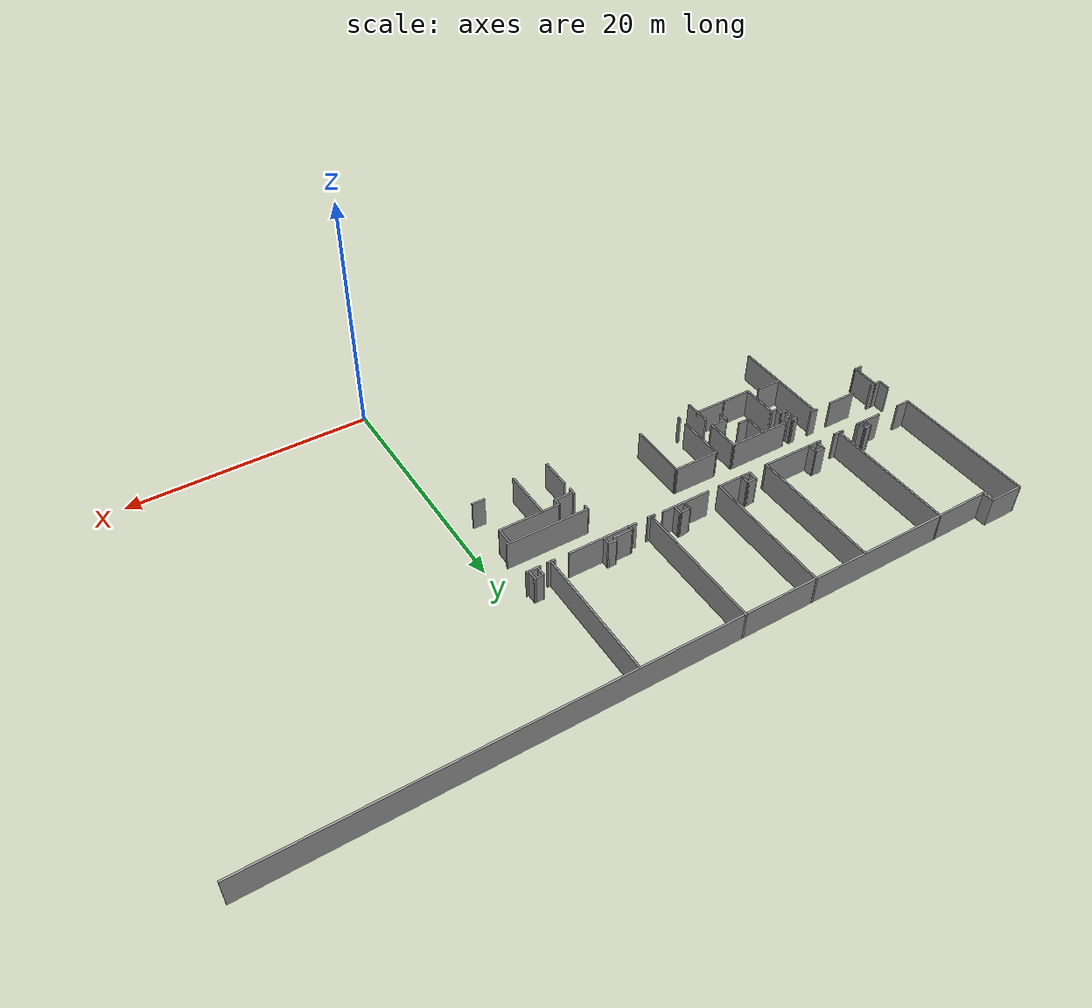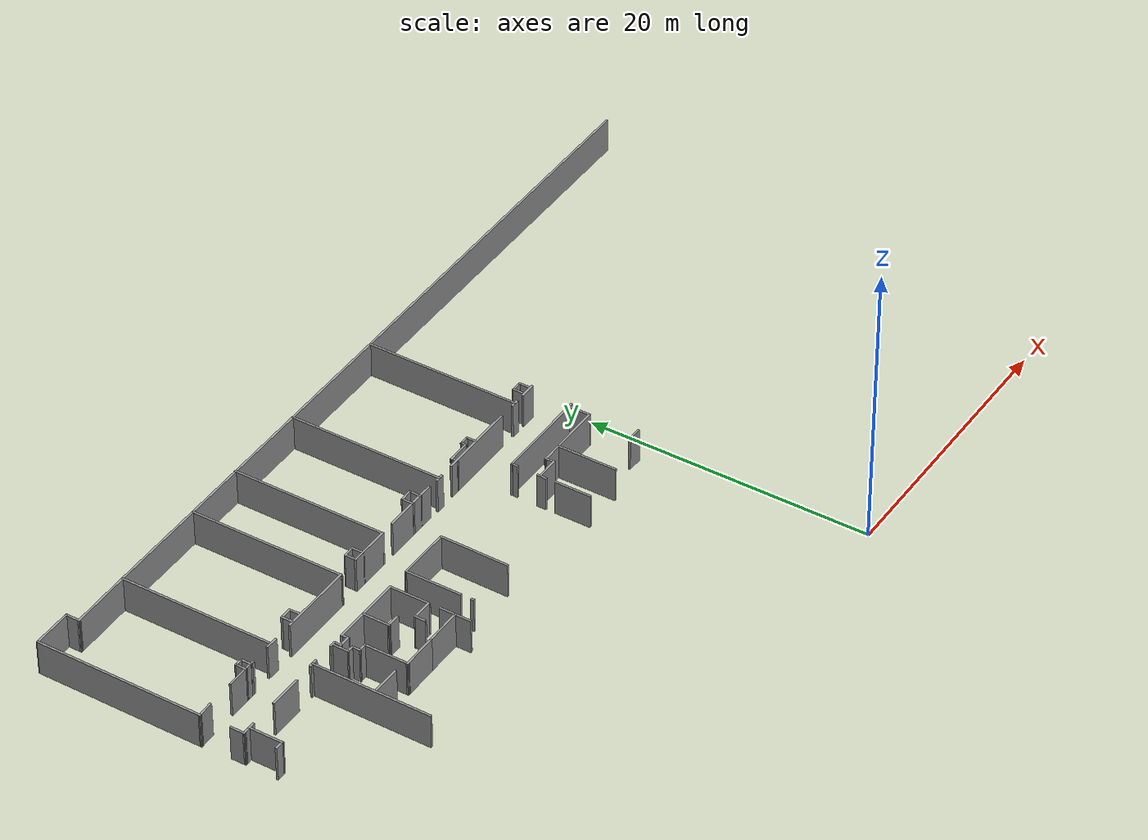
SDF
<sdf version="1.7">
 <model name="HopperFloorGround_Full">
  <pose>0.395792 0.11413 0 0 -0 0</pose>
  <link name="Wall_101">
   <collision name="Wall_101_Collision">
    <geometry><box><size>1 0.15 2.5</size></box></geometry>
    <pose>0 0 1.25 0 -0 0</pose>
   </collision>
   <visual name="Wall_101_Visual">
    <pose>0 0 1.25 0 -0 0</pose>
    <geometry><box><size>1 0.15 2.5</size></box></geometry>
    <material>
     <script><uri>file://media/materials/scripts/gazebo.material</uri><name>Gazebo/Grey</name></script>
     <ambient>1 1 1 1</ambient>
    </material>
    <meta><layer>0</layer></meta>
   </visual>
   <pose>-24.7641 18.4859 0 0 -0 3.14159</pose>
  </link>
  <link name="Wall_102">
   <collision name="Wall_102_Collision">
    <geometry><box><size>1.96918 0.15 2.5</size></box></geometry>
    <pose>0 0 1.25 0 -0 0</pose>
   </collision>
   <visual name="Wall_102_Visual">
    <pose>0 0 1.25 0 -0 0</pose>
    <geometry><box><size>1.96918 0.15 2.5</size></box></geometry>
    <material>
     <script><uri>file://media/materials/scripts/gazebo.material</uri><name>Gazebo/Grey</name></script>
     <ambient>1 1 1 1</ambient>
    </material>
    <meta><layer>0</layer></meta>
   </visual>
   <pose>-25.1838 19.3954 0 0 -0 1.56504</pose>
  </link>
  <link name="Wall_106">
   <collision name="Wall_106_Collision">
    <geometry><box><size>8.39659 0.15 2.5</size></box></geometry>
    <pose>0 0 1.25 0 -0 0</pose>
   </collision>
   <visual name="Wall_106_Visual">
    <pose>0 0 1.25 0 -0 0</pose>
    <geometry><box><size>8.39659 0.15 2.5</size></box></geometry>
    <material>
     <script><uri>file://media/materials/scripts/gazebo.material</uri><name>Gazebo/Grey</name></script>
     <ambient>1 1 1 1</ambient>
    </material>
    <meta><layer>0</layer></meta>
   </visual>
   <pose>-30.3925 16.2262 0 0 -0 1.56836</pose>
  </link>
  <link name="Wall_123">
   <collision name="Wall_123_Collision">
    <geometry><box><size>2.25 0.15 2.5</size></box></geometry>
    <pose>0 0 1.25 0 -0 0</pose>
   </collision>
   <visual name="Wall_123_Visual">
    <pose>0 0 1.25 0 -0 0</pose>
    <geometry><box><size>2.25 0.15 2.5</size></box></geometry>
    <material>
     <script><uri>file://media/materials/scripts/gazebo.material</uri><name>Gazebo/Grey</name></script>
     <ambient>1 1 1 1</ambient>
    </material>
    <meta><layer>0</layer></meta>
   </visual>
   <pose>-22.29 15.6966 0 0 -0 -1.5708</pose>
  </link>
  <link name="Wall_125">
   <collision name="Wall_125_Collision">
    <geometry><box><size>2.75 0.15 2.5</size></box></geometry>
    <pose>0 0 1.25 0 -0 0</pose>
   </collision>
   <visual name="Wall_125_Visual">
    <pose>0 0 1.25 0 -0 0</pose>
    <geometry><box><size>2.75 0.15 2.5</size></box></geometry>
    <material>
     <script><uri>file://media/materials/scripts/gazebo.material</uri><name>Gazebo/Grey</name></script>
     <ambient>1 1 1 1</ambient>
    </material>
    <meta><layer>0</layer></meta>
   </visual>
   <pose>-23.59 15.7001 0 0 -0 3.14159</pose>
  </link>
  <link name="Wall_126">
   <collision name="Wall_126_Collision">
    <geometry><box><size>2.64453 0.15 2.5</size></box></geometry>
    <pose>0 0 1.25 0 -0 0</pose>
   </collision>
   <visual name="Wall_126_Visual">
    <pose>0 0 1.25 0 -0 0</pose>
    <geometry><box><size>2.64453 0.15 2.5</size></box></geometry>
    <material>
     <script><uri>file://media/materials/scripts/gazebo.material</uri><name>Gazebo/Grey</name></script>
     <ambient>1 1 1 1</ambient>
    </material>
    <meta><layer>0</layer></meta>
   </visual>
   <pose>-26.1372 15.6944 0 0 -0 -3.13698</pose>
  </link>
  <link name="Wall_127">
   <collision name="Wall_127_Collision">
    <geometry><box><size>3.17459 0.15 2.5</size></box></geometry>
    <pose>0 0 1.25 0 -0 0</pose>
   </collision>
   <visual name="Wall_127_Visual">
    <pose>0 0 1.25 0 -0 0</pose>
    <geometry><box><size>3.17459 0.15 2.5</size></box></geometry>
    <material>
     <script><uri>file://media/materials/scripts/gazebo.material</uri><name>Gazebo/Grey</name></script>
     <ambient>1 1 1 1</ambient>
    </material>
    <meta><layer>0</layer></meta>
   </visual>
   <pose>-27.3787 17.2009 0 0 -0 1.56699</pose>
  </link>
  <link name="Wall_129">
   <collision name="Wall_129_Collision">
    <geometry><box><size>0.692389 0.15 2.5</size></box></geometry>
    <pose>0 0 1.25 0 -0 0</pose>
   </collision>
   <visual name="Wall_129_Visual">
    <pose>0 0 1.25 0 -0 0</pose>
    <geometry><box><size>0.692389 0.15 2.5</size></box></geometry>
    <material>
     <script><uri>file://media/materials/scripts/gazebo.material</uri><name>Gazebo/Grey</name></script>
     <ambient>1 1 1 1</ambient>
    </material>
    <meta><layer>0</layer></meta>
   </visual>
   <pose>-27.6442 18.7138 0 0 -0 3.13898</pose>
  </link>
  <link name="Wall_130">
   <collision name="Wall_130_Collision">
    <geometry><box><size>0.679125 0.15 2.5</size></box></geometry>
    <pose>0 0 1.25 0 -0 0</pose>
   </collision>
   <visual name="Wall_130_Visual">
    <pose>0 0 1.25 0 -0 0</pose>
    <geometry><box><size>0.679125 0.15 2.5</size></box></geometry>
    <material>
     <script><uri>file://media/materials/scripts/gazebo.material</uri><name>Gazebo/Grey</name></script>
     <ambient>1 1 1 1</ambient>
    </material>
    <meta><layer>0</layer></meta>
   </visual>
   <pose>-27.9211 18.979 0 0 -0 1.59253</pose>
  </link>
  <link name="Wall_131">
   <collision name="Wall_131_Collision">
    <geometry><box><size>0.598647 0.15 2.5</size></box></geometry>
    <pose>0 0 1.25 0 -0 0</pose>
   </collision>
   <visual name="Wall_131_Visual">
    <pose>0 0 1.25 0 -0 0</pose>
    <geometry><box><size>0.598647 0.15 2.5</size></box></geometry>
    <material>
     <script><uri>file://media/materials/scripts/gazebo.material</uri><name>Gazebo/Grey</name></script>
     <ambient>1 1 1 1</ambient>
    </material>
    <meta><layer>0</layer></meta>
   </visual>
   <pose>-28.1511 19.2493 0 0 -0 3.11596</pose>
  </link>
  <link name="Wall_132">
   <collision name="Wall_132_Collision">
    <geometry><box><size>1.17356 0.15 2.5</size></box></geometry>
    <pose>0 0 1.25 0 -0 0</pose>
   </collision>
   <visual name="Wall_132_Visual">
    <pose>0 0 1.25 0 -0 0</pose>
    <geometry><box><size>1.17356 0.15 2.5</size></box></geometry>
    <material>
     <script><uri>file://media/materials/scripts/gazebo.material</uri><name>Gazebo/Grey</name></script>
     <ambient>1 1 1 1</ambient>
    </material>
    <meta><layer>0</layer></meta>
   </visual>
   <pose>-28.3696 19.7668 0 0 -0 1.55956</pose>
  </link>
  <link name="Wall_134">
   <collision name="Wall_134_Collision">
    <geometry><box><size>2.16263 0.15 2.5</size></box></geometry>
    <pose>0 0 1.25 0 -0 0</pose>
   </collision>
   <visual name="Wall_134_Visual">
    <pose>0 0 1.25 0 -0 0</pose>
    <geometry><box><size>2.16263 0.15 2.5</size></box></geometry>
    <material>
     <script><uri>file://media/materials/scripts/gazebo.material</uri><name>Gazebo/Grey</name></script>
     <ambient>1 1 1 1</ambient>
    </material>
    <meta><layer>0</layer></meta>
   </visual>
   <pose>-29.3586 15.9545 0 0 -0 3.13016</pose>
  </link>
  <link name="Wall_142">
   <collision name="Wall_142_Collision">
    <geometry><box><size>4 0.15 2.5</size></box></geometry>
    <pose>0 0 1.25 0 -0 0</pose>
   </collision>
   <visual name="Wall_142_Visual">
    <pose>0 0 1.25 0 -0 0</pose>
    <geometry><box><size>4 0.15 2.5</size></box></geometry>
    <material>
     <script><uri>file://media/materials/scripts/gazebo.material</uri><name>Gazebo/Grey</name></script>
     <ambient>1 1 1 1</ambient>
    </material>
    <meta><layer>0</layer></meta>
   </visual>
   <pose>-20.6382 18.3734 0 0 -0 1.5708</pose>
  </link>
  <link name="Wall_143">
   <collision name="Wall_143_Collision">
    <geometry><box><size>3.9067 0.15 2.5</size></box></geometry>
    <pose>0 0 1.25 0 -0 0</pose>
   </collision>
   <visual name="Wall_143_Visual">
    <pose>0 0 1.25 0 -0 0</pose>
    <geometry><box><size>3.9067 0.15 2.5</size></box></geometry>
    <material>
     <script><uri>file://media/materials/scripts/gazebo.material</uri><name>Gazebo/Grey</name></script>
     <ambient>1 1 1 1</ambient>
    </material>
    <meta><layer>0</layer></meta>
   </visual>
   <pose>-18.7599 20.2897 0 0 -0 -0.004631</pose>
  </link>
  <link name="Wall_144">
   <collision name="Wall_144_Collision">
    <geometry><box><size>4.92593 0.15 2.5</size></box></geometry>
    <pose>0 0 1.25 0 -0 0</pose>
   </collision>
   <visual name="Wall_144_Visual">
    <pose>0 0 1.25 0 -0 0</pose>
    <geometry><box><size>4.92593 0.15 2.5</size></box></geometry>
    <material>
     <script><uri>file://media/materials/scripts/gazebo.material</uri><name>Gazebo/Grey</name></script>
     <ambient>1 1 1 1</ambient>
    </material>
    <meta><layer>0</layer></meta>
   </visual>
   <pose>-16.9045 17.8932 0 0 -0 -1.58035</pose>
  </link>
  <link name="Wall_147">
   <collision name="Wall_147_Collision">
    <geometry><box><size>0.25 0.15 2.5</size></box></geometry>
    <pose>0 0 1.25 0 -0 0</pose>
   </collision>
   <visual name="Wall_147_Visual">
    <pose>0 0 1.25 0 -0 0</pose>
    <geometry><box><size>0.25 0.15 2.5</size></box></geometry>
    <material>
     <script><uri>file://media/materials/scripts/gazebo.material</uri><name>Gazebo/Grey</name></script>
     <ambient>1 1 1 1</ambient>
    </material>
    <meta><layer>0</layer></meta>
   </visual>
   <pose>-20.623 15.5619 0 0 -0 -1.5708</pose>
  </link>
  <link name="Wall_289">
   <collision name="Wall_289_Collision">
    <geometry><box><size>1.21738 0.15 2.5</size></box></geometry>
    <pose>0 0 1.25 0 -0 0</pose>
   </collision>
   <visual name="Wall_289_Visual">
    <pose>0 0 1.25 0 -0 0</pose>
    <geometry><box><size>1.21738 0.15 2.5</size></box></geometry>
    <material>
     <script><uri>file://media/materials/scripts/gazebo.material</uri><name>Gazebo/Grey</name></script>
     <ambient>1 1 1 1</ambient>
    </material>
    <meta><layer>0</layer></meta>
   </visual>
   <pose>-36.9815 23.4312 0 0 -0 -3.10827</pose>
  </link>
  <link name="Wall_290">
   <collision name="Wall_290_Collision">
    <geometry><box><size>11.8914 0.15 2.5</size></box></geometry>
    <pose>0 0 1.25 0 -0 0</pose>
   </collision>
   <visual name="Wall_290_Visual">
    <pose>0 0 1.25 0 -0 0</pose>
    <geometry><box><size>11.8914 0.15 2.5</size></box></geometry>
    <material>
     <script><uri>file://media/materials/scripts/gazebo.material</uri><name>Gazebo/Grey</name></script>
     <ambient>1 1 1 1</ambient>
    </material>
    <meta><layer>0</layer></meta>
   </visual>
   <pose>-37.4974 29.2841 0 0 -0 1.56777</pose>
  </link>
  <link name="Wall_291">
   <collision name="Wall_291_Collision">
    <geometry><box><size>2.96077 0.15 2.5</size></box></geometry>
    <pose>0 0 1.25 0 -0 0</pose>
   </collision>
   <visual name="Wall_291_Visual">
    <pose>0 0 1.25 0 -0 0</pose>
    <geometry><box><size>2.96077 0.15 2.5</size></box></geometry>
    <material>
     <script><uri>file://media/materials/scripts/gazebo.material</uri><name>Gazebo/Grey</name></script>
     <ambient>1 1 1 1</ambient>
    </material>
    <meta><layer>0</layer></meta>
   </visual>
   <pose>-36.0742 35.1547 0 0 -0 0</pose>
  </link>
  <link name="Wall_292">
   <collision name="Wall_292_Collision">
    <geometry><box><size>1.07506 0.15 2.5</size></box></geometry>
    <pose>0 0 1.25 0 -0 0</pose>
   </collision>
   <visual name="Wall_292_Visual">
    <pose>0 0 1.25 0 -0 0</pose>
    <geometry><box><size>1.07506 0.15 2.5</size></box></geometry>
    <material>
     <script><uri>file://media/materials/scripts/gazebo.material</uri><name>Gazebo/Grey</name></script>
     <ambient>1 1 1 1</ambient>
    </material>
    <meta><layer>0</layer></meta>
   </visual>
   <pose>-34.6688 34.6921 0 0 -0 -1.5708</pose>
  </link>
  <link name="Wall_293">
   <collision name="Wall_293_Collision">
    <geometry><box><size>4.56242 0.15 2.5</size></box></geometry>
    <pose>0 0 1.25 0 -0 0</pose>
   </collision>
   <visual name="Wall_293_Visual">
    <pose>0 0 1.25 0 -0 0</pose>
    <geometry><box><size>4.56242 0.15 2.5</size></box></geometry>
    <material>
     <script><uri>file://media/materials/scripts/gazebo.material</uri><name>Gazebo/Grey</name></script>
     <ambient>1 1 1 1</ambient>
    </material>
    <meta><layer>0</layer></meta>
   </visual>
   <pose>-32.4629 34.2474 0 0 -0 0.008064</pose>
  </link>
  <link name="Wall_294">
   <collision name="Wall_294_Collision">
    <geometry><box><size>10.895 0.15 2.5</size></box></geometry>
    <pose>0 0 1.25 0 -0 0</pose>
   </collision>
   <visual name="Wall_294_Visual">
    <pose>0 0 1.25 0 -0 0</pose>
    <geometry><box><size>10.895 0.15 2.5</size></box></geometry>
    <material>
     <script><uri>file://media/materials/scripts/gazebo.material</uri><name>Gazebo/Grey</name></script>
     <ambient>1 1 1 1</ambient>
    </material>
    <meta><layer>0</layer></meta>
   </visual>
   <pose>-30.257 28.8927 0 0 -0 -1.5708</pose>
  </link>
  <link name="Wall_296">
   <collision name="Wall_296_Collision">
    <geometry><box><size>1.63469 0.15 2.5</size></box></geometry>
    <pose>0 0 1.25 0 -0 0</pose>
   </collision>
   <visual name="Wall_296_Visual">
    <pose>0 0 1.25 0 -0 0</pose>
    <geometry><box><size>1.63469 0.15 2.5</size></box></geometry>
    <material>
     <script><uri>file://media/materials/scripts/gazebo.material</uri><name>Gazebo/Grey</name></script>
     <ambient>1 1 1 1</ambient>
    </material>
    <meta><layer>0</layer></meta>
   </visual>
   <pose>-33.6172 23.4485 0 0 -0 0</pose>
  </link>
  <link name="Wall_297">
   <collision name="Wall_297_Collision">
    <geometry><box><size>0.818915 0.15 2.5</size></box></geometry>
    <pose>0 0 1.25 0 -0 0</pose>
   </collision>
   <visual name="Wall_297_Visual">
    <pose>0 0 1.25 0 -0 0</pose>
    <geometry><box><size>0.818915 0.15 2.5</size></box></geometry>
    <material>
     <script><uri>file://media/materials/scripts/gazebo.material</uri><name>Gazebo/Grey</name></script>
     <ambient>1 1 1 1</ambient>
    </material>
    <meta><layer>0</layer></meta>
   </visual>
   <pose>-32.8682 23.7829 0 0 -0 1.5508</pose>
  </link>
  <link name="Wall_298">
   <collision name="Wall_298_Collision">
    <geometry><box><size>0.65845 0.15 2.5</size></box></geometry>
    <pose>0 0 1.25 0 -0 0</pose>
   </collision>
   <visual name="Wall_298_Visual">
    <pose>0 0 1.25 0 -0 0</pose>
    <geometry><box><size>0.65845 0.15 2.5</size></box></geometry>
    <material>
     <script><uri>file://media/materials/scripts/gazebo.material</uri><name>Gazebo/Grey</name></script>
     <ambient>1 1 1 1</ambient>
    </material>
    <meta><layer>0</layer></meta>
   </visual>
   <pose>-32.6074 24.124 0 0 -0 0.02631</pose>
  </link>
  <link name="Wall_299">
   <collision name="Wall_299_Collision">
    <geometry><box><size>0.846047 0.15 2.5</size></box></geometry>
    <pose>0 0 1.25 0 -0 0</pose>
   </collision>
   <visual name="Wall_299_Visual">
    <pose>0 0 1.25 0 -0 0</pose>
    <geometry><box><size>0.846047 0.15 2.5</size></box></geometry>
    <material>
     <script><uri>file://media/materials/scripts/gazebo.material</uri><name>Gazebo/Grey</name></script>
     <ambient>1 1 1 1</ambient>
    </material>
    <meta><layer>0</layer></meta>
   </visual>
   <pose>-32.3465 23.7829 0 0 -0 -1.55157</pose>
  </link>
  <link name="Wall_301">
   <collision name="Wall_301_Collision">
    <geometry><box><size>0.885659 0.15 2.5</size></box></geometry>
    <pose>0 0 1.25 0 -0 0</pose>
   </collision>
   <visual name="Wall_301_Visual">
    <pose>0 0 1.25 0 -0 0</pose>
    <geometry><box><size>0.885659 0.15 2.5</size></box></geometry>
    <material>
     <script><uri>file://media/materials/scripts/gazebo.material</uri><name>Gazebo/Grey</name></script>
     <ambient>1 1 1 1</ambient>
    </material>
    <meta><layer>0</layer></meta>
   </visual>
   <pose>-32.5071 23.4485 0 0 -0 0</pose>
  </link>
  <link name="Wall_303">
   <collision name="Wall_303_Collision">
    <geometry><box><size>0.925902 0.15 2.5</size></box></geometry>
    <pose>0 0 1.25 0 -0 0</pose>
   </collision>
   <visual name="Wall_303_Visual">
    <pose>0 0 1.25 0 -0 0</pose>
    <geometry><box><size>0.925902 0.15 2.5</size></box></geometry>
    <material>
     <script><uri>file://media/materials/scripts/gazebo.material</uri><name>Gazebo/Grey</name></script>
     <ambient>1 1 1 1</ambient>
    </material>
    <meta><layer>0</layer></meta>
   </visual>
   <pose>-30.1998 23.4552 0 0 -0 -0.01724</pose>
  </link>
  <link name="Wall_305">
   <collision name="Wall_305_Collision">
    <geometry><box><size>5.47154 0.15 2.5</size></box></geometry>
    <pose>0 0 1.25 0 -0 0</pose>
   </collision>
   <visual name="Wall_305_Visual">
    <pose>0 0 1.25 0 -0 0</pose>
    <geometry><box><size>5.47154 0.15 2.5</size></box></geometry>
    <material>
     <script><uri>file://media/materials/scripts/gazebo.material</uri><name>Gazebo/Grey</name></script>
     <ambient>1 1 1 1</ambient>
    </material>
    <meta><layer>0</layer></meta>
   </visual>
   <pose>-25.641 23.4371 0 0 -0 -0.005814</pose>
  </link>
  <link name="Wall_306">
   <collision name="Wall_306_Collision">
    <geometry><box><size>10.9786 0.15 2.5</size></box></geometry>
    <pose>0 0 1.25 0 -0 0</pose>
   </collision>
   <visual name="Wall_306_Visual">
    <pose>0 0 1.25 0 -0 0</pose>
    <geometry><box><size>10.9786 0.15 2.5</size></box></geometry>
    <material>
     <script><uri>file://media/materials/scripts/gazebo.material</uri><name>Gazebo/Grey</name></script>
     <ambient>1 1 1 1</ambient>
    </material>
    <meta><layer>0</layer></meta>
   </visual>
   <pose>-23.0267 28.8359 0 0 -0 1.57365</pose>
  </link>
  <link name="Wall_308">
   <collision name="Wall_308_Collision">
    <geometry><box><size>0.861589 0.15 2.5</size></box></geometry>
    <pose>0 0 1.25 0 -0 0</pose>
   </collision>
   <visual name="Wall_308_Visual">
    <pose>0 0 1.25 0 -0 0</pose>
    <geometry><box><size>0.861589 0.15 2.5</size></box></geometry>
    <material>
     <script><uri>file://media/materials/scripts/gazebo.material</uri><name>Gazebo/Grey</name></script>
     <ambient>1 1 1 1</ambient>
    </material>
    <meta><layer>0</layer></meta>
   </visual>
   <pose>-27.9923 23.8703 0 0 -0 1.5708</pose>
  </link>
  <link name="Wall_309">
   <collision name="Wall_309_Collision">
    <geometry><box><size>0.923466 0.15 2.5</size></box></geometry>
    <pose>0 0 1.25 0 -0 0</pose>
   </collision>
   <visual name="Wall_309_Visual">
    <pose>0 0 1.25 0 -0 0</pose>
    <geometry><box><size>0.923466 0.15 2.5</size></box></geometry>
    <material>
     <script><uri>file://media/materials/scripts/gazebo.material</uri><name>Gazebo/Grey</name></script>
     <ambient>1 1 1 1</ambient>
    </material>
    <meta><layer>0</layer></meta>
   </visual>
   <pose>-27.6056 24.2261 0 0 -0 0</pose>
  </link>
  <link name="Wall_310">
   <collision name="Wall_310_Collision">
    <geometry><box><size>0.893171 0.15 2.5</size></box></geometry>
    <pose>0 0 1.25 0 -0 0</pose>
   </collision>
   <visual name="Wall_310_Visual">
    <pose>0 0 1.25 0 -0 0</pose>
    <geometry><box><size>0.893171 0.15 2.5</size></box></geometry>
    <material>
     <script><uri>file://media/materials/scripts/gazebo.material</uri><name>Gazebo/Grey</name></script>
     <ambient>1 1 1 1</ambient>
    </material>
    <meta><layer>0</layer></meta>
   </visual>
   <pose>-27.2034 23.8548 0 0 -0 -1.52915</pose>
  </link>
  <link name="Wall_312">
   <collision name="Wall_312_Collision">
    <geometry><box><size>3 0.15 2.5</size></box></geometry>
    <pose>0 0 1.25 0 -0 0</pose>
   </collision>
   <visual name="Wall_312_Visual">
    <pose>0 0 1.25 0 -0 0</pose>
    <geometry><box><size>3 0.15 2.5</size></box></geometry>
    <material>
     <script><uri>file://media/materials/scripts/gazebo.material</uri><name>Gazebo/Grey</name></script>
     <ambient>1 1 1 1</ambient>
    </material>
    <meta><layer>0</layer></meta>
   </visual>
   <pose>-19.9465 23.4526 0 0 -0 0</pose>
  </link>
  <link name="Wall_314">
   <collision name="Wall_314_Collision">
    <geometry><box><size>4.15469 0.15 2.5</size></box></geometry>
    <pose>0 0 1.25 0 -0 0</pose>
   </collision>
   <visual name="Wall_314_Visual">
    <pose>0 0 1.25 0 -0 0</pose>
    <geometry><box><size>4.15469 0.15 2.5</size></box></geometry>
    <material>
     <script><uri>file://media/materials/scripts/gazebo.material</uri><name>Gazebo/Grey</name></script>
     <ambient>1 1 1 1</ambient>
    </material>
    <meta><layer>0</layer></meta>
   </visual>
   <pose>-15.4399 23.4526 0 0 -0 0</pose>
  </link>
  <link name="Wall_316">
   <collision name="Wall_316_Collision">
    <geometry><box><size>0.892527 0.15 2.5</size></box></geometry>
    <pose>0 0 1.25 0 -0 0</pose>
   </collision>
   <visual name="Wall_316_Visual">
    <pose>0 0 1.25 0 -0 0</pose>
    <geometry><box><size>0.892527 0.15 2.5</size></box></geometry>
    <material>
     <script><uri>file://media/materials/scripts/gazebo.material</uri><name>Gazebo/Grey</name></script>
     <ambient>1 1 1 1</ambient>
    </material>
    <meta><layer>0</layer></meta>
   </visual>
   <pose>-21.3715 23.8239 0 0 -0 1.5708</pose>
  </link>
  <link name="Wall_317">
   <collision name="Wall_317_Collision">
    <geometry><box><size>0.893171 0.15 2.5</size></box></geometry>
    <pose>0 0 1.25 0 -0 0</pose>
   </collision>
   <visual name="Wall_317_Visual">
    <pose>0 0 1.25 0 -0 0</pose>
    <geometry><box><size>0.893171 0.15 2.5</size></box></geometry>
    <material>
     <script><uri>file://media/materials/scripts/gazebo.material</uri><name>Gazebo/Grey</name></script>
     <ambient>1 1 1 1</ambient>
    </material>
    <meta><layer>0</layer></meta>
   </visual>
   <pose>-21.0002 24.2106 0 0 -0 0.041643</pose>
  </link>
  <link name="Wall_318">
   <collision name="Wall_318_Collision">
    <geometry><box><size>0.924084 0.15 2.5</size></box></geometry>
    <pose>0 0 1.25 0 -0 0</pose>
   </collision>
   <visual name="Wall_318_Visual">
    <pose>0 0 1.25 0 -0 0</pose>
    <geometry><box><size>0.924084 0.15 2.5</size></box></geometry>
    <material>
     <script><uri>file://media/materials/scripts/gazebo.material</uri><name>Gazebo/Grey</name></script>
     <ambient>1 1 1 1</ambient>
    </material>
    <meta><layer>0</layer></meta>
   </visual>
   <pose>-20.6135 23.8393 0 0 -0 -1.53082</pose>
  </link>
  <link name="Wall_320">
   <collision name="Wall_320_Collision">
    <geometry><box><size>0.516732 0.15 2.5</size></box></geometry>
    <pose>0 0 1.25 0 -0 0</pose>
   </collision>
   <visual name="Wall_320_Visual">
    <pose>0 0 1.25 0 -0 0</pose>
    <geometry><box><size>0.516732 0.15 2.5</size></box></geometry>
    <material>
     <script><uri>file://media/materials/scripts/gazebo.material</uri><name>Gazebo/Grey</name></script>
     <ambient>1 1 1 1</ambient>
    </material>
    <meta><layer>0</layer></meta>
   </visual>
   <pose>-8.86715 20.1664 0 0 -0 1.5153</pose>
  </link>
  <link name="Wall_321">
   <collision name="Wall_321_Collision">
    <geometry><box><size>6.94445 0.15 2.5</size></box></geometry>
    <pose>0 0 1.25 0 -0 0</pose>
   </collision>
   <visual name="Wall_321_Visual">
    <pose>0 0 1.25 0 -0 0</pose>
    <geometry><box><size>6.94445 0.15 2.5</size></box></geometry>
    <material>
     <script><uri>file://media/materials/scripts/gazebo.material</uri><name>Gazebo/Grey</name></script>
     <ambient>1 1 1 1</ambient>
    </material>
    <meta><layer>0</layer></meta>
   </visual>
   <pose>-5.48009 20.3494 0 0 -0 0</pose>
  </link>
  <link name="Wall_324">
   <collision name="Wall_324_Collision">
    <geometry><box><size>1.61481 0.15 2.5</size></box></geometry>
    <pose>0 0 1.25 0 -0 0</pose>
   </collision>
   <visual name="Wall_324_Visual">
    <pose>0 0 1.25 0 -0 0</pose>
    <geometry><box><size>1.61481 0.15 2.5</size></box></geometry>
    <material>
     <script><uri>file://media/materials/scripts/gazebo.material</uri><name>Gazebo/Grey</name></script>
     <ambient>1 1 1 1</ambient>
    </material>
    <meta><layer>0</layer></meta>
   </visual>
   <pose>-2.31681 19.5968 0 0 -0 -1.58468</pose>
  </link>
  <link name="Wall_325">
   <collision name="Wall_325_Collision">
    <geometry><box><size>5.17468 0.15 2.5</size></box></geometry>
    <pose>0 0 1.25 0 -0 0</pose>
   </collision>
   <visual name="Wall_325_Visual">
    <pose>0 0 1.25 0 -0 0</pose>
    <geometry><box><size>5.17468 0.15 2.5</size></box></geometry>
    <material>
     <script><uri>file://media/materials/scripts/gazebo.material</uri><name>Gazebo/Grey</name></script>
     <ambient>1 1 1 1</ambient>
    </material>
    <meta><layer>0</layer></meta>
   </visual>
   <pose>-4.8393 18.8543 0 0 -0 -3.13754</pose>
  </link>
  <link name="Wall_326">
   <collision name="Wall_326_Collision">
    <geometry><box><size>0.700756 0.15 2.5</size></box></geometry>
    <pose>0 0 1.25 0 -0 0</pose>
   </collision>
   <visual name="Wall_326_Visual">
    <pose>0 0 1.25 0 -0 0</pose>
    <geometry><box><size>0.700756 0.15 2.5</size></box></geometry>
    <material>
     <script><uri>file://media/materials/scripts/gazebo.material</uri><name>Gazebo/Grey</name></script>
     <ambient>1 1 1 1</ambient>
    </material>
    <meta><layer>0</layer></meta>
   </visual>
   <pose>-7.33128 18.5695 0 0 -0 -1.49686</pose>
  </link>
  <link name="Wall_327">
   <collision name="Wall_327_Collision">
    <geometry><box><size>1.67583 0.15 2.5</size></box></geometry>
    <pose>0 0 1.25 0 -0 0</pose>
   </collision>
   <visual name="Wall_327_Visual">
    <pose>0 0 1.25 0 -0 0</pose>
    <geometry><box><size>1.67583 0.15 2.5</size></box></geometry>
    <material>
     <script><uri>file://media/materials/scripts/gazebo.material</uri><name>Gazebo/Grey</name></script>
     <ambient>1 1 1 1</ambient>
    </material>
    <meta><layer>0</layer></meta>
   </visual>
   <pose>-8.07378 18.2847 0 0 -0 -3.12826</pose>
  </link>
  <link name="Wall_329">
   <collision name="Wall_329_Collision">
    <geometry><box><size>0.699628 0.15 2.5</size></box></geometry>
    <pose>0 0 1.25 0 -0 0</pose>
   </collision>
   <visual name="Wall_329_Visual">
    <pose>0 0 1.25 0 -0 0</pose>
    <geometry><box><size>0.699628 0.15 2.5</size></box></geometry>
    <material>
     <script><uri>file://media/materials/scripts/gazebo.material</uri><name>Gazebo/Grey</name></script>
     <ambient>1 1 1 1</ambient>
    </material>
    <meta><layer>0</layer></meta>
   </visual>
   <pose>-8.90783 18.1626 0 0 -0 1.53378</pose>
  </link>
  <link name="Wall_331">
   <collision name="Wall_331_Collision">
    <geometry><box><size>2.59112 0.15 2.5</size></box></geometry>
    <pose>0 0 1.25 0 -0 0</pose>
   </collision>
   <visual name="Wall_331_Visual">
    <pose>0 0 1.25 0 -0 0</pose>
    <geometry><box><size>2.59112 0.15 2.5</size></box></geometry>
    <material>
     <script><uri>file://media/materials/scripts/gazebo.material</uri><name>Gazebo/Grey</name></script>
     <ambient>1 1 1 1</ambient>
    </material>
    <meta><layer>0</layer></meta>
   </visual>
   <pose>-8.87732 15.9147 0 0 -0 -1.5708</pose>
  </link>
  <link name="Wall_431">
   <collision name="Wall_431_Collision">
    <geometry><box><size>1.03928 0.15 2.5</size></box></geometry>
    <pose>0 0 1.25 0 -0 0</pose>
   </collision>
   <visual name="Wall_431_Visual">
    <pose>0 0 1.25 0 -0 0</pose>
    <geometry><box><size>1.03928 0.15 2.5</size></box></geometry>
    <material>
     <script><uri>file://media/materials/scripts/gazebo.material</uri><name>Gazebo/Grey</name></script>
     <ambient>1 1 1 1</ambient>
    </material>
    <meta><layer>0</layer></meta>
   </visual>
   <pose>-2.44093 15.5096 0 0 -0 3.11528</pose>
  </link>
  <link name="Wall_457">
   <collision name="Wall_457_Collision">
    <geometry><box><size>54.7652 0.15 2.5</size></box></geometry>
    <pose>0 0 1.25 0 -0 0</pose>
   </collision>
   <visual name="Wall_457_Visual">
    <pose>0 0 1.25 0 -0 0</pose>
    <geometry><box><size>54.7652 0.15 2.5</size></box></geometry>
    <material>
     <script><uri>file://media/materials/scripts/gazebo.material</uri><name>Gazebo/Grey</name></script>
     <ambient>1 1 1 1</ambient>
    </material>
    <meta><layer>0</layer></meta>
   </visual>
   <pose>-2.94935 34.2729 0 0 -0 0.000282</pose>
  </link>
  <link name="Wall_459">
   <collision name="Wall_459_Collision">
    <geometry><box><size>11 0.15 2.5</size></box></geometry>
    <pose>0 0 1.25 0 -0 0</pose>
   </collision>
   <visual name="Wall_459_Visual">
    <pose>0 0 1.25 0 -0 0</pose>
    <geometry><box><size>11 0.15 2.5</size></box></geometry>
    <material>
     <script><uri>file://media/materials/scripts/gazebo.material</uri><name>Gazebo/Grey</name></script>
     <ambient>1 1 1 1</ambient>
    </material>
    <meta><layer>0</layer></meta>
   </visual>
   <pose>-18.5215 28.8776 0 0 -0 1.5708</pose>
  </link>
  <link name="Wall_461">
   <collision name="Wall_461_Collision">
    <geometry><box><size>11 0.15 2.5</size></box></geometry>
    <pose>0 0 1.25 0 -0 0</pose>
   </collision>
   <visual name="Wall_461_Visual">
    <pose>0 0 1.25 0 -0 0</pose>
    <geometry><box><size>11 0.15 2.5</size></box></geometry>
    <material>
     <script><uri>file://media/materials/scripts/gazebo.material</uri><name>Gazebo/Grey</name></script>
     <ambient>1 1 1 1</ambient>
    </material>
    <meta><layer>0</layer></meta>
   </visual>
   <pose>-12.3846 28.8556 0 0 -0 -1.5708</pose>
  </link>
  <link name="Wall_463">
   <collision name="Wall_463_Collision">
    <geometry><box><size>5.75 0.15 2.5</size></box></geometry>
    <pose>0 0 1.25 0 -0 0</pose>
   </collision>
   <visual name="Wall_463_Visual">
    <pose>0 0 1.25 0 -0 0</pose>
    <geometry><box><size>5.75 0.15 2.5</size></box></geometry>
    <material>
     <script><uri>file://media/materials/scripts/gazebo.material</uri><name>Gazebo/Grey</name></script>
     <ambient>1 1 1 1</ambient>
    </material>
    <meta><layer>0</layer></meta>
   </visual>
   <pose>-8.19346 23.3968 0 0 -0 0</pose>
  </link>
  <link name="Wall_465">
   <collision name="Wall_465_Collision">
    <geometry><box><size>0.634532 0.15 2.5</size></box></geometry>
    <pose>0 0 1.25 0 -0 0</pose>
   </collision>
   <visual name="Wall_465_Visual">
    <pose>0 0 1.25 0 -0 0</pose>
    <geometry><box><size>0.634532 0.15 2.5</size></box></geometry>
    <material>
     <script><uri>file://media/materials/scripts/gazebo.material</uri><name>Gazebo/Grey</name></script>
     <ambient>1 1 1 1</ambient>
    </material>
    <meta><layer>0</layer></meta>
   </visual>
   <pose>-12.3861 23.3751 0 0 -0 0</pose>
  </link>
  <link name="Wall_467">
   <collision name="Wall_467_Collision">
    <geometry><box><size>0.634532 0.15 2.5</size></box></geometry>
    <pose>0 0 1.25 0 -0 0</pose>
   </collision>
   <visual name="Wall_467_Visual">
    <pose>0 0 1.25 0 -0 0</pose>
    <geometry><box><size>0.634532 0.15 2.5</size></box></geometry>
    <material>
     <script><uri>file://media/materials/scripts/gazebo.material</uri><name>Gazebo/Grey</name></script>
     <ambient>1 1 1 1</ambient>
    </material>
    <meta><layer>0</layer></meta>
   </visual>
   <pose>-3.86453 23.3751 0 0 -0 0</pose>
  </link>
  <link name="Wall_469">
   <collision name="Wall_469_Collision">
    <geometry><box><size>1.17293 0.15 2.5</size></box></geometry>
    <pose>0 0 1.25 0 -0 0</pose>
   </collision>
   <visual name="Wall_469_Visual">
    <pose>0 0 1.25 0 -0 0</pose>
    <geometry><box><size>1.17293 0.15 2.5</size></box></geometry>
    <material>
     <script><uri>file://media/materials/scripts/gazebo.material</uri><name>Gazebo/Grey</name></script>
     <ambient>1 1 1 1</ambient>
    </material>
    <meta><layer>0</layer></meta>
   </visual>
   <pose>-2.41093 23.3712 0 0 -0 0.007519</pose>
  </link>
  <link name="Wall_472">
   <collision name="Wall_472_Collision">
    <geometry><box><size>0.942321 0.15 2.5</size></box></geometry>
    <pose>0 0 1.25 0 -0 0</pose>
   </collision>
   <visual name="Wall_472_Visual">
    <pose>0 0 1.25 0 -0 0</pose>
    <geometry><box><size>0.942321 0.15 2.5</size></box></geometry>
    <material>
     <script><uri>file://media/materials/scripts/gazebo.material</uri><name>Gazebo/Grey</name></script>
     <ambient>1 1 1 1</ambient>
    </material>
    <meta><layer>0</layer></meta>
   </visual>
   <pose>-2.75318 23.7788 0 0 -0 1.55138</pose>
  </link>
  <link name="Wall_473">
   <collision name="Wall_473_Collision">
    <geometry><box><size>0.82685 0.15 2.5</size></box></geometry>
    <pose>0 0 1.25 0 -0 0</pose>
   </collision>
   <visual name="Wall_473_Visual">
    <pose>0 0 1.25 0 -0 0</pose>
    <geometry><box><size>0.82685 0.15 2.5</size></box></geometry>
    <material>
     <script><uri>file://media/materials/scripts/gazebo.material</uri><name>Gazebo/Grey</name></script>
     <ambient>1 1 1 1</ambient>
    </material>
    <meta><layer>0</layer></meta>
   </visual>
   <pose>-2.40709 24.1749 0 0 -0 0</pose>
  </link>
  <link name="Wall_474">
   <collision name="Wall_474_Collision">
    <geometry><box><size>0.93448 0.15 2.5</size></box></geometry>
    <pose>0 0 1.25 0 -0 0</pose>
   </collision>
   <visual name="Wall_474_Visual">
    <pose>0 0 1.25 0 -0 0</pose>
    <geometry><box><size>0.93448 0.15 2.5</size></box></geometry>
    <material>
     <script><uri>file://media/materials/scripts/gazebo.material</uri><name>Gazebo/Grey</name></script>
     <ambient>1 1 1 1</ambient>
    </material>
    <meta><layer>0</layer></meta>
   </visual>
   <pose>-2.06868 23.7827 0 0 -0 -1.5708</pose>
  </link>
  <link name="Wall_510">
   <collision name="Wall_510_Collision">
    <geometry><box><size>10.9794 0.15 2.5</size></box></geometry>
    <pose>0 0 1.25 0 -0 0</pose>
   </collision>
   <visual name="Wall_510_Visual">
    <pose>0 0 1.25 0 -0 0</pose>
    <geometry><box><size>10.9794 0.15 2.5</size></box></geometry>
    <material>
     <script><uri>file://media/materials/scripts/gazebo.material</uri><name>Gazebo/Grey</name></script>
     <ambient>1 1 1 1</ambient>
    </material>
    <meta><layer>0</layer></meta>
   </visual>
   <pose>-3.83612 28.8176 0 0 -0 1.56828</pose>
  </link>
  <link name="Wall_512">
   <collision name="Wall_512_Collision">
    <geometry><box><size>0.75 0.15 2.5</size></box></geometry>
    <pose>0 0 1.25 0 -0 0</pose>
   </collision>
   <visual name="Wall_512_Visual">
    <pose>0 0 1.25 0 -0 0</pose>
    <geometry><box><size>0.75 0.15 2.5</size></box></geometry>
    <material>
     <script><uri>file://media/materials/scripts/gazebo.material</uri><name>Gazebo/Grey</name></script>
     <ambient>1 1 1 1</ambient>
    </material>
    <meta><layer>0</layer></meta>
   </visual>
   <pose>-8.25767 23.7573 0 0 -0 1.5708</pose>
  </link>
  <link name="Wall_513">
   <collision name="Wall_513_Collision">
    <geometry><box><size>0.75 0.15 2.5</size></box></geometry>
    <pose>0 0 1.25 0 -0 0</pose>
   </collision>
   <visual name="Wall_513_Visual">
    <pose>0 0 1.25 0 -0 0</pose>
    <geometry><box><size>0.75 0.15 2.5</size></box></geometry>
    <material>
     <script><uri>file://media/materials/scripts/gazebo.material</uri><name>Gazebo/Grey</name></script>
     <ambient>1 1 1 1</ambient>
    </material>
    <meta><layer>0</layer></meta>
   </visual>
   <pose>-8.55767 24.0573 0 0 -0 3.14159</pose>
  </link>
  <link name="Wall_514">
   <collision name="Wall_514_Collision">
    <geometry><box><size>0.447466 0.15 2.5</size></box></geometry>
    <pose>0 0 1.25 0 -0 0</pose>
   </collision>
   <visual name="Wall_514_Visual">
    <pose>0 0 1.25 0 -0 0</pose>
    <geometry><box><size>0.447466 0.15 2.5</size></box></geometry>
    <material>
     <script><uri>file://media/materials/scripts/gazebo.material</uri><name>Gazebo/Grey</name></script>
     <ambient>1 1 1 1</ambient>
    </material>
    <meta><layer>0</layer></meta>
   </visual>
   <pose>-8.87185 23.9092 0 0 -0 -1.66629</pose>
  </link>
  <link name="Wall_515">
   <collision name="Wall_515_Collision">
    <geometry><box><size>1.71379 0.15 2.5</size></box></geometry>
    <pose>0 0 1.25 0 -0 0</pose>
   </collision>
   <visual name="Wall_515_Visual">
    <pose>0 0 1.25 0 -0 0</pose>
    <geometry><box><size>1.71379 0.15 2.5</size></box></geometry>
    <material>
     <script><uri>file://media/materials/scripts/gazebo.material</uri><name>Gazebo/Grey</name></script>
     <ambient>1 1 1 1</ambient>
    </material>
    <meta><layer>0</layer></meta>
   </visual>
   <pose>-9.66786 23.7509 0 0 -0 -3.12844</pose>
  </link>
  <link name="Wall_516">
   <collision name="Wall_516_Collision">
    <geometry><box><size>0.502176 0.15 2.5</size></box></geometry>
    <pose>0 0 1.25 0 -0 0</pose>
   </collision>
   <visual name="Wall_516_Visual">
    <pose>0 0 1.25 0 -0 0</pose>
    <geometry><box><size>0.502176 0.15 2.5</size></box></geometry>
    <material>
     <script><uri>file://media/materials/scripts/gazebo.material</uri><name>Gazebo/Grey</name></script>
     <ambient>1 1 1 1</ambient>
    </material>
    <meta><layer>0</layer></meta>
   </visual>
   <pose>-10.4291 23.5657 0 0 -0 -1.45369</pose>
  </link>
  <link name="Wall_518">
   <collision name="Wall_518_Collision">
    <geometry><box><size>0.911529 0.15 2.5</size></box></geometry>
    <pose>0 0 1.25 0 -0 0</pose>
   </collision>
   <visual name="Wall_518_Visual">
    <pose>0 0 1.25 0 -0 0</pose>
    <geometry><box><size>0.911529 0.15 2.5</size></box></geometry>
    <material>
     <script><uri>file://media/materials/scripts/gazebo.material</uri><name>Gazebo/Grey</name></script>
     <ambient>1 1 1 1</ambient>
    </material>
    <meta><layer>0</layer></meta>
   </visual>
   <pose>-14.4102 23.8332 0 0 -0 1.54378</pose>
  </link>
  <link name="Wall_519">
   <collision name="Wall_519_Collision">
    <geometry><box><size>0.994551 0.15 2.5</size></box></geometry>
    <pose>0 0 1.25 0 -0 0</pose>
   </collision>
   <visual name="Wall_519_Visual">
    <pose>0 0 1.25 0 -0 0</pose>
    <geometry><box><size>0.994551 0.15 2.5</size></box></geometry>
    <material>
     <script><uri>file://media/materials/scripts/gazebo.material</uri><name>Gazebo/Grey</name></script>
     <ambient>1 1 1 1</ambient>
    </material>
    <meta><layer>0</layer></meta>
   </visual>
   <pose>-14.8217 24.1932 0 0 -0 -3.09285</pose>
  </link>
  <link name="Wall_520">
   <collision name="Wall_520_Collision">
    <geometry><box><size>0.890962 0.15 2.5</size></box></geometry>
    <pose>0 0 1.25 0 -0 0</pose>
   </collision>
   <visual name="Wall_520_Visual">
    <pose>0 0 1.25 0 -0 0</pose>
    <geometry><box><size>0.890962 0.15 2.5</size></box></geometry>
    <material>
     <script><uri>file://media/materials/scripts/gazebo.material</uri><name>Gazebo/Grey</name></script>
     <ambient>1 1 1 1</ambient>
    </material>
    <meta><layer>0</layer></meta>
   </visual>
   <pose>-15.2435 23.8023 0 0 -0 -1.5708</pose>
  </link>
  <link name="Wall_528">
   <collision name="Wall_528_Collision">
    <geometry><box><size>4.21643 0.15 2.5</size></box></geometry>
    <pose>0 0 1.25 0 -0 0</pose>
   </collision>
   <visual name="Wall_528_Visual">
    <pose>0 0 1.25 0 -0 0</pose>
    <geometry><box><size>4.21643 0.15 2.5</size></box></geometry>
    <material>
     <script><uri>file://media/materials/scripts/gazebo.material</uri><name>Gazebo/Grey</name></script>
     <ambient>1 1 1 1</ambient>
    </material>
    <meta><layer>0</layer></meta>
   </visual>
   <pose>-5.91468 16.7913 0 0 -0 -1.5708</pose>
  </link>
  <link name="Wall_80">
   <collision name="Wall_80_Collision">
    <geometry><box><size>0.692474 0.15 2.5</size></box></geometry>
    <pose>0 0 1.25 0 -0 0</pose>
   </collision>
   <visual name="Wall_80_Visual">
    <pose>0 0 1.25 0 -0 0</pose>
    <geometry><box><size>0.692474 0.15 2.5</size></box></geometry>
    <material>
     <script><uri>file://media/materials/scripts/gazebo.material</uri><name>Gazebo/Grey</name></script>
     <ambient>1 1 1 1</ambient>
    </material>
    <meta><layer>0</layer></meta>
   </visual>
   <pose>-37.1164 18.0704 0 0 -0 -0.032247</pose>
  </link>
  <link name="Wall_82">
   <collision name="Wall_82_Collision">
    <geometry><box><size>2.45869 0.15 2.5</size></box></geometry>
    <pose>0 0 1.25 0 -0 0</pose>
   </collision>
   <visual name="Wall_82_Visual">
    <pose>0 0 1.25 0 -0 0</pose>
    <geometry><box><size>2.45869 0.15 2.5</size></box></geometry>
    <material>
     <script><uri>file://media/materials/scripts/gazebo.material</uri><name>Gazebo/Grey</name></script>
     <ambient>1 1 1 1</ambient>
    </material>
    <meta><layer>0</layer></meta>
   </visual>
   <pose>-36.8453 19.216 0 0 -0 1.5708</pose>
  </link>
  <link name="Wall_83">
   <collision name="Wall_83_Collision">
    <geometry><box><size>0.517708 0.15 2.5</size></box></geometry>
    <pose>0 0 1.25 0 -0 0</pose>
   </collision>
   <visual name="Wall_83_Visual">
    <pose>0 0 1.25 0 -0 0</pose>
    <geometry><box><size>0.517708 0.15 2.5</size></box></geometry>
    <material>
     <script><uri>file://media/materials/scripts/gazebo.material</uri><name>Gazebo/Grey</name></script>
     <ambient>1 1 1 1</ambient>
    </material>
    <meta><layer>0</layer></meta>
   </visual>
   <pose>-36.6616 20.3704 0 0 -0 0</pose>
  </link>
  <link name="Wall_85">
   <collision name="Wall_85_Collision">
    <geometry><box><size>2.40622 0.15 2.5</size></box></geometry>
    <pose>0 0 1.25 0 -0 0</pose>
   </collision>
   <visual name="Wall_85_Visual">
    <pose>0 0 1.25 0 -0 0</pose>
    <geometry><box><size>2.40622 0.15 2.5</size></box></geometry>
    <material>
     <script><uri>file://media/materials/scripts/gazebo.material</uri><name>Gazebo/Grey</name></script>
     <ambient>1 1 1 1</ambient>
    </material>
    <meta><layer>0</layer></meta>
   </visual>
   <pose>-33.2336 20.3529 0 0 -0 0</pose>
  </link>
  <link name="Wall_87">
   <collision name="Wall_87_Collision">
    <geometry><box><size>0.693319 0.15 2.5</size></box></geometry>
    <pose>0 0 1.25 0 -0 0</pose>
   </collision>
   <visual name="Wall_87_Visual">
    <pose>0 0 1.25 0 -0 0</pose>
    <geometry><box><size>0.693319 0.15 2.5</size></box></geometry>
    <material>
     <script><uri>file://media/materials/scripts/gazebo.material</uri><name>Gazebo/Grey</name></script>
     <ambient>1 1 1 1</ambient>
    </material>
    <meta><layer>0</layer></meta>
   </visual>
   <pose>-37.1164 20.3616 0 0 -0 -3.10935</pose>
  </link>
  <link name="Wall_88">
   <collision name="Wall_88_Collision">
    <geometry><box><size>1.07697 0.15 2.5</size></box></geometry>
    <pose>0 0 1.25 0 -0 0</pose>
   </collision>
   <visual name="Wall_88_Visual">
    <pose>0 0 1.25 0 -0 0</pose>
    <geometry><box><size>1.07697 0.15 2.5</size></box></geometry>
    <material>
     <script><uri>file://media/materials/scripts/gazebo.material</uri><name>Gazebo/Grey</name></script>
     <ambient>1 1 1 1</ambient>
    </material>
    <meta><layer>0</layer></meta>
   </visual>
   <pose>-37.3875 20.8164 0 0 -0 1.5708</pose>
  </link>
  <link name="Wall_90">
   <collision name="Wall_90_Collision">
    <geometry><box><size>0.656287 0.15 2.5</size></box></geometry>
    <pose>0 0 1.25 0 -0 0</pose>
   </collision>
   <visual name="Wall_90_Visual">
    <pose>0 0 1.25 0 -0 0</pose>
    <geometry><box><size>0.656287 0.15 2.5</size></box></geometry>
    <material>
     <script><uri>file://media/materials/scripts/gazebo.material</uri><name>Gazebo/Grey</name></script>
     <ambient>1 1 1 1</ambient>
    </material>
    <meta><layer>0</layer></meta>
   </visual>
   <pose>-30.3344 20.3796 0 0 -0 0</pose>
  </link>
  <link name="Wall_92">
   <collision name="Wall_92_Collision">
    <geometry><box><size>0.518444 0.15 2.5</size></box></geometry>
    <pose>0 0 1.25 0 -0 0</pose>
   </collision>
   <visual name="Wall_92_Visual">
    <pose>0 0 1.25 0 -0 0</pose>
    <geometry><box><size>0.518444 0.15 2.5</size></box></geometry>
    <material>
     <script><uri>file://media/materials/scripts/gazebo.material</uri><name>Gazebo/Grey</name></script>
     <ambient>1 1 1 1</ambient>
    </material>
    <meta><layer>0</layer></meta>
   </visual>
   <pose>-28.3454 20.3664 0 0 -0 0</pose>
  </link>
  <link name="Wall_93">
   <collision name="Wall_93_Collision">
    <geometry><box><size>0.616883 0.15 2.5</size></box></geometry>
    <pose>0 0 1.25 0 -0 0</pose>
   </collision>
   <visual name="Wall_93_Visual">
    <pose>0 0 1.25 0 -0 0</pose>
    <geometry><box><size>0.616883 0.15 2.5</size></box></geometry>
    <material>
     <script><uri>file://media/materials/scripts/gazebo.material</uri><name>Gazebo/Grey</name></script>
     <ambient>1 1 1 1</ambient>
    </material>
    <meta><layer>0</layer></meta>
   </visual>
   <pose>-28.1646 20.133 0 0 -0 -1.58488</pose>
  </link>
  <link name="Wall_94">
   <collision name="Wall_94_Collision">
    <geometry><box><size>0.906172 0.15 2.5</size></box></geometry>
    <pose>0 0 1.25 0 -0 0</pose>
   </collision>
   <visual name="Wall_94_Visual">
    <pose>0 0 1.25 0 -0 0</pose>
    <geometry><box><size>0.906172 0.15 2.5</size></box></geometry>
    <material>
     <script><uri>file://media/materials/scripts/gazebo.material</uri><name>Gazebo/Grey</name></script>
     <ambient>1 1 1 1</ambient>
    </material>
    <meta><layer>0</layer></meta>
   </visual>
   <pose>-27.7898 19.9029 0 0 -0 0.008695</pose>
  </link>
  <link name="Wall_95">
   <collision name="Wall_95_Collision">
    <geometry><box><size>0.577436 0.15 2.5</size></box></geometry>
    <pose>0 0 1.25 0 -0 0</pose>
   </collision>
   <visual name="Wall_95_Visual">
    <pose>0 0 1.25 0 -0 0</pose>
    <geometry><box><size>0.577436 0.15 2.5</size></box></geometry>
    <material>
     <script><uri>file://media/materials/scripts/gazebo.material</uri><name>Gazebo/Grey</name></script>
     <ambient>1 1 1 1</ambient>
    </material>
    <meta><layer>0</layer></meta>
   </visual>
   <pose>-27.4117 20.1198 0 0 -0 1.5708</pose>
  </link>
  <link name="Wall_96">
   <collision name="Wall_96_Collision">
    <geometry><box><size>5.25159 0.15 2.5</size></box></geometry>
    <pose>0 0 1.25 0 -0 0</pose>
   </collision>
   <visual name="Wall_96_Visual">
    <pose>0 0 1.25 0 -0 0</pose>
    <geometry><box><size>5.25159 0.15 2.5</size></box></geometry>
    <material>
     <script><uri>file://media/materials/scripts/gazebo.material</uri><name>Gazebo/Grey</name></script>
     <ambient>1 1 1 1</ambient>
    </material>
    <meta><layer>0</layer></meta>
   </visual>
   <pose>-24.861 20.3367 0 0 -0 0.001239</pose>
  </link>
  <link name="Wall_97">
   <collision name="Wall_97_Collision">
    <geometry><box><size>2.91349 0.15 2.5</size></box></geometry>
    <pose>0 0 1.25 0 -0 0</pose>
   </collision>
   <visual name="Wall_97_Visual">
    <pose>0 0 1.25 0 -0 0</pose>
    <geometry><box><size>2.91349 0.15 2.5</size></box></geometry>
    <material>
     <script><uri>file://media/materials/scripts/gazebo.material</uri><name>Gazebo/Grey</name></script>
     <ambient>1 1 1 1</ambient>
    </material>
    <meta><layer>0</layer></meta>
   </visual>
   <pose>-22.3102 18.9581 0 0 -0 -1.5708</pose>
  </link>
  <link name="Wall_98">
   <collision name="Wall_98_Collision">
    <geometry><box><size>1.54964 0.15 2.5</size></box></geometry>
    <pose>0 0 1.25 0 -0 0</pose>
   </collision>
   <visual name="Wall_98_Visual">
    <pose>0 0 1.25 0 -0 0</pose>
    <geometry><box><size>1.54964 0.15 2.5</size></box></geometry>
    <material>
     <script><uri>file://media/materials/scripts/gazebo.material</uri><name>Gazebo/Grey</name></script>
     <ambient>1 1 1 1</ambient>
    </material>
    <meta><layer>0</layer></meta>
   </visual>
   <pose>-23.0098 17.5764 0 0 -0 3.14159</pose>
  </link>
  <link name="Wall_99">
   <collision name="Wall_99_Collision">
    <geometry><box><size>0.797369 0.15 2.5</size></box></geometry>
    <pose>0 0 1.25 0 -0 0</pose>
   </collision>
   <visual name="Wall_99_Visual">
    <pose>0 0 1.25 0 -0 0</pose>
    <geometry><box><size>0.797369 0.15 2.5</size></box></geometry>
    <material>
     <script><uri>file://media/materials/scripts/gazebo.material</uri><name>Gazebo/Grey</name></script>
     <ambient>1 1 1 1</ambient>
    </material>
    <meta><layer>0</layer></meta>
   </visual>
   <pose>-23.7182 17.2528 0 0 -0 -1.59782</pose>
  </link>
  <static>1</static>
 </model>
</sdf>
